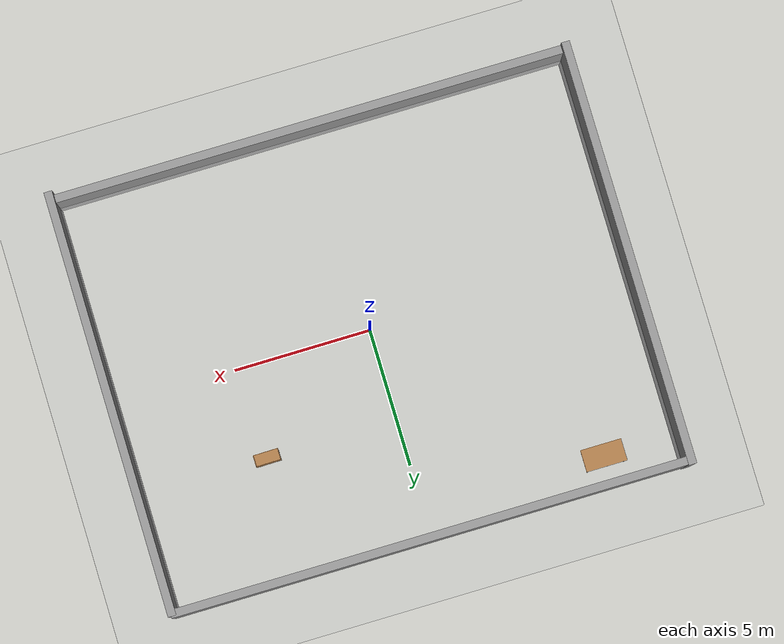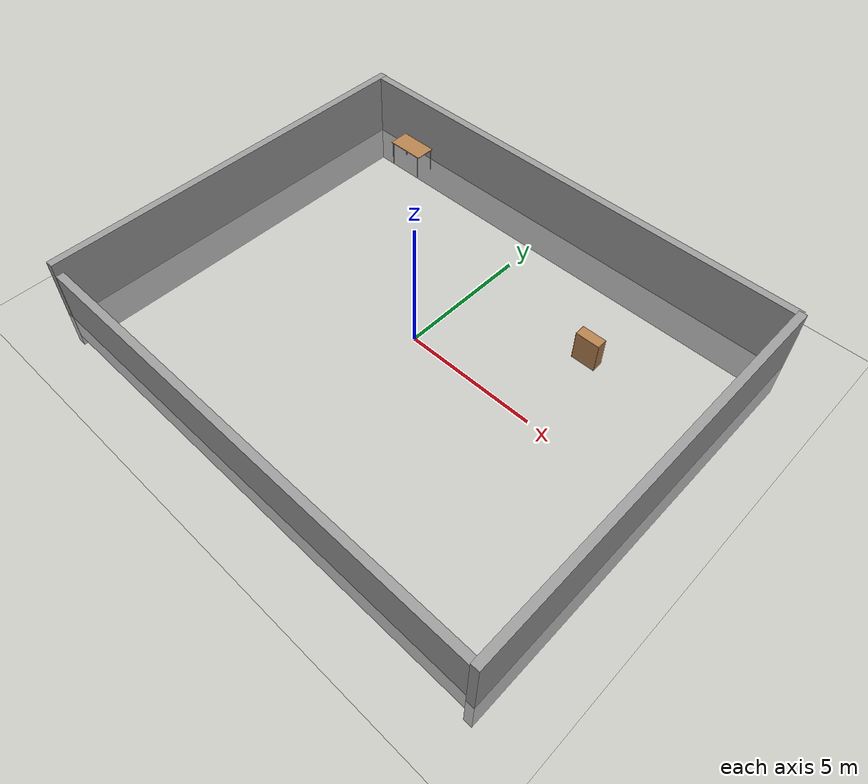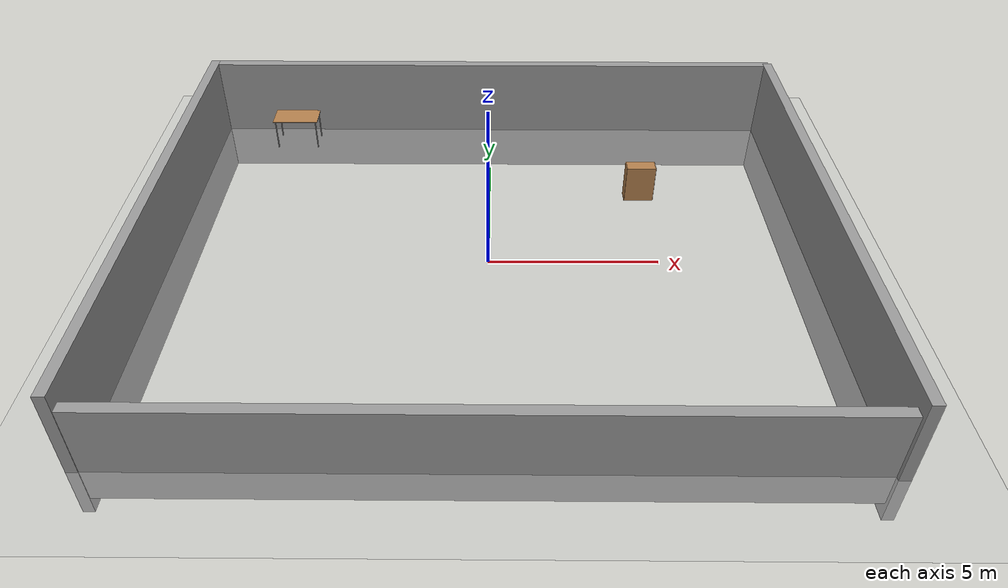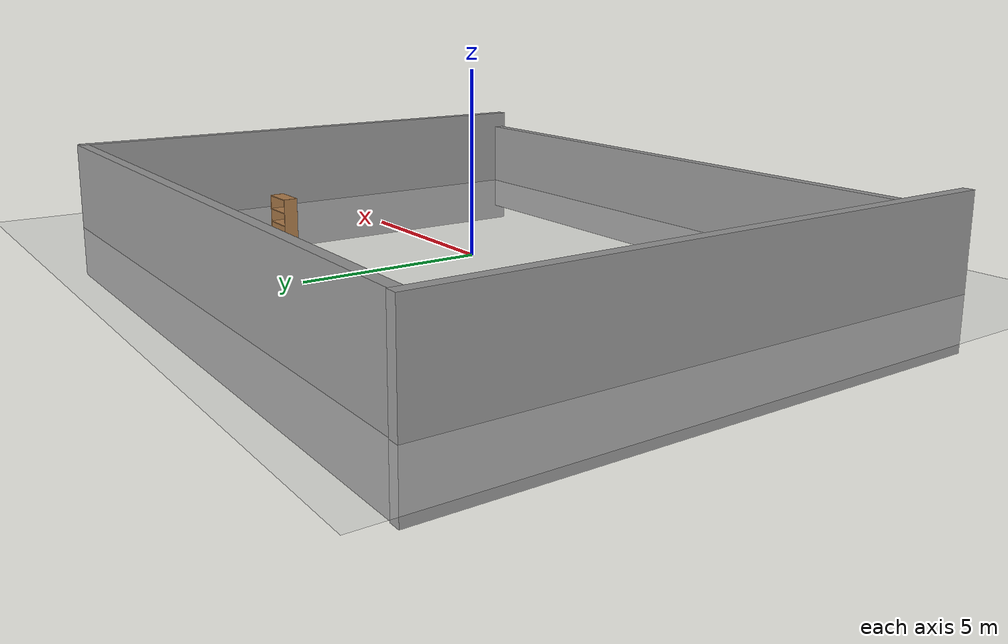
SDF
<sdf version="1.6">
 <world name="default">
  <light name="sun" type="directional">
   <pose>0 0 10 0 -0 0</pose>
   <diffuse>0.8 0.8 0.8 1</diffuse>
   <specular>0.2 0.2 0.2 1</specular>
   <attenuation>
    <range>1000</range>
    <constant>0.9</constant>
    <linear>0.01</linear>
    <quadratic>0.001</quadratic>
   </attenuation>
   <direction>-0.5 0.1 -0.9</direction>
  </light>
  <model name="ground_plane">
   <static>1</static>
   <link name="link">
    <collision name="collision">
     <geometry><plane><normal>0 0 1</normal><size>100 100</size></plane></geometry>
     <surface><friction><ode><mu>100</mu><mu2>50</mu2></ode></friction></surface>
    </collision>
    <visual name="visual">
     <cast_shadows>0</cast_shadows>
     <geometry><plane><normal>0 0 1</normal><size>100 100</size></plane></geometry>
     <material>
      <script><uri>file://media/materials/scripts/gazebo.material</uri><name>Gazebo/Grey</name></script>
     </material>
    </visual>
   </link>
  </model>
  <gravity>0 0 -9.8</gravity>
  <magnetic_field>6e-06 2.3e-05 -4.2e-05</magnetic_field>
  <atmosphere type="adiabatic"/>
  <physics name="default_physics" default="0" type="ode">
   <max_step_size>0.001</max_step_size>
   <real_time_factor>1</real_time_factor>
   <real_time_update_rate>1000</real_time_update_rate>
  </physics>
  <scene><ambient>0.4 0.4 0.4 1</ambient><background>0.7 0.7 0.7 1</background><shadows>1</shadows></scene>
  <spherical_coordinates>
   <surface_model>EARTH_WGS84</surface_model>
   <latitude_deg>0</latitude_deg>
   <longitude_deg>0</longitude_deg>
   <elevation>0</elevation>
   <heading_deg>0</heading_deg>
  </spherical_coordinates>
  <model name="wall_horizontal">
   <link name="link">
    <inertial>
     <mass>1</mass>
     <inertia>
      <ixx>0.166667</ixx>
      <ixy>0</ixy>
      <ixz>0</ixz>
      <iyy>0.166667</iyy>
      <iyz>0</iyz>
      <izz>0.166667</izz>
     </inertia>
    </inertial>
    <visual name="visual">
     <geometry><box><size>19 0.3 3</size></box></geometry>
     <material>
      <script><name>Gazebo/Grey</name><uri>file://media/materials/scripts/gazebo.material</uri></script>
      <shader type="pixel"><normal_map>__default__</normal_map></shader>
      <ambient>0.3 0.3 0.3 1</ambient>
      <diffuse>0.7 0.7 0.7 1</diffuse>
      <specular>0.01 0.01 0.01 1</specular>
      <emissive>0 0 0 1</emissive>
     </material>
    </visual>
    <collision name="collision">
     <geometry><box><size>1 1 1</size></box></geometry>
     <surface>
      <friction>
       <ode><mu>1</mu><mu2>1</mu2><fdir1>0 0 0</fdir1><slip1>0</slip1><slip2>0</slip2></ode>
       <torsional>
        <coefficient>1</coefficient>
        <patch_radius>0</patch_radius>
        <surface_radius>0</surface_radius>
        <use_patch_radius>1</use_patch_radius>
        <ode><slip>0</slip></ode>
       </torsional>
      </friction>
      <bounce><restitution_coefficient>0</restitution_coefficient><threshold>1e+06</threshold></bounce>
      <contact>
       <collide_without_contact>0</collide_without_contact>
       <collide_without_contact_bitmask>1</collide_without_contact_bitmask>
       <collide_bitmask>1</collide_bitmask>
       <ode>
        <soft_cfm>0</soft_cfm>
        <soft_erp>0.2</soft_erp>
        <kp>1e+13</kp>
        <kd>1</kd>
        <max_vel>0.01</max_vel>
        <min_depth>0</min_depth>
       </ode>
       <bullet>
        <split_impulse>1</split_impulse>
        <split_impulse_penetration_threshold>-0.01</split_impulse_penetration_threshold>
        <soft_cfm>0</soft_cfm>
        <soft_erp>0.2</soft_erp>
        <kp>1e+13</kp>
        <kd>1</kd>
       </bullet>
      </contact>
     </surface>
    </collision>
   </link>
   <static>0</static>
   <pose>0.016453 -7.48188 0.499995 0 -1e-05 0</pose>
  </model>
  <model name="wall_horizontal_0">
   <link name="link">
    <inertial>
     <mass>1</mass>
     <inertia>
      <ixx>0.166667</ixx>
      <ixy>0</ixy>
      <ixz>0</ixz>
      <iyy>0.166667</iyy>
      <iyz>0</iyz>
      <izz>0.166667</izz>
     </inertia>
    </inertial>
    <visual name="visual">
     <geometry><box><size>19 0.3 4</size></box></geometry>
     <material>
      <script><name>Gazebo/Grey</name><uri>file://media/materials/scripts/gazebo.material</uri></script>
      <shader type="pixel"><normal_map>__default__</normal_map></shader>
      <ambient>0.3 0.3 0.3 1</ambient>
      <diffuse>0.7 0.7 0.7 1</diffuse>
      <specular>0.01 0.01 0.01 1</specular>
      <emissive>0 0 0 1</emissive>
     </material>
    </visual>
    <collision name="collision">
     <geometry><box><size>1 1 1</size></box></geometry>
     <surface>
      <friction>
       <ode><mu>1</mu><mu2>1</mu2><fdir1>0 0 0</fdir1><slip1>0</slip1><slip2>0</slip2></ode>
       <torsional>
        <coefficient>1</coefficient>
        <patch_radius>0</patch_radius>
        <surface_radius>0</surface_radius>
        <use_patch_radius>1</use_patch_radius>
        <ode><slip>0</slip></ode>
       </torsional>
      </friction>
      <bounce><restitution_coefficient>0</restitution_coefficient><threshold>1e+06</threshold></bounce>
      <contact>
       <collide_without_contact>0</collide_without_contact>
       <collide_without_contact_bitmask>1</collide_without_contact_bitmask>
       <collide_bitmask>1</collide_bitmask>
       <ode>
        <soft_cfm>0</soft_cfm>
        <soft_erp>0.2</soft_erp>
        <kp>1e+13</kp>
        <kd>1</kd>
        <max_vel>0.01</max_vel>
        <min_depth>0</min_depth>
       </ode>
       <bullet>
        <split_impulse>1</split_impulse>
        <split_impulse_penetration_threshold>-0.01</split_impulse_penetration_threshold>
        <soft_cfm>0</soft_cfm>
        <soft_erp>0.2</soft_erp>
        <kp>1e+13</kp>
        <kd>1</kd>
       </bullet>
      </contact>
     </surface>
    </collision>
   </link>
   <static>0</static>
   <pose>0.031259 7.67758 0.499974 1e-05 -0 0</pose>
  </model>
  <model name="bookshelf">
   <static>1</static>
   <link name="link">
    <inertial><mass>1</mass></inertial>
    <collision name="back">
     <pose>0 0.005 0.6 0 -0 0</pose>
     <geometry><box><size>0.9 0.01 1.2</size></box></geometry>
    </collision>
    <visual name="visual1">
     <pose>0 0.005 0.6 0 -0 0</pose>
     <geometry><box><size>0.9 0.01 1.2</size></box></geometry>
     <material>
      <script><uri>file://media/materials/scripts/gazebo.material</uri><name>Gazebo/Wood</name></script>
     </material>
    </visual>
    <collision name="left_side">
     <pose>0.45 -0.195 0.6 0 -0 0</pose>
     <geometry><box><size>0.02 0.4 1.2</size></box></geometry>
    </collision>
    <visual name="visual2">
     <pose>0.45 -0.195 0.6 0 -0 0</pose>
     <geometry><box><size>0.02 0.4 1.2</size></box></geometry>
     <material>
      <script><uri>file://media/materials/scripts/gazebo.material</uri><name>Gazebo/Wood</name></script>
     </material>
    </visual>
    <collision name="right_side">
     <pose>-0.45 -0.195 0.6 0 -0 0</pose>
     <geometry><box><size>0.02 0.4 1.2</size></box></geometry>
    </collision>
    <visual name="visual3">
     <pose>-0.45 -0.195 0.6 0 -0 0</pose>
     <geometry><box><size>0.02 0.4 1.2</size></box></geometry>
     <material>
      <script><uri>file://media/materials/scripts/gazebo.material</uri><name>Gazebo/Wood</name></script>
     </material>
    </visual>
    <collision name="bottom">
     <pose>0 -0.195 0.03 0 -0 0</pose>
     <geometry><box><size>0.88 0.4 0.06</size></box></geometry>
    </collision>
    <visual name="visual4">
     <pose>0 -0.195 0.03 0 -0 0</pose>
     <geometry><box><size>0.88 0.4 0.06</size></box></geometry>
     <material>
      <script><uri>file://media/materials/scripts/gazebo.material</uri><name>Gazebo/Wood</name></script>
     </material>
    </visual>
    <collision name="top">
     <pose>0 -0.195 1.19 0 -0 0</pose>
     <geometry><box><size>0.88 0.4 0.02</size></box></geometry>
    </collision>
    <visual name="visual5">
     <pose>0 -0.195 1.19 0 -0 0</pose>
     <geometry><box><size>0.88 0.4 0.02</size></box></geometry>
     <material>
      <script><uri>file://media/materials/scripts/gazebo.material</uri><name>Gazebo/Wood</name></script>
     </material>
    </visual>
    <collision name="low_shelf">
     <pose>0 -0.195 0.43 0 -0 0</pose>
     <geometry><box><size>0.88 0.4 0.02</size></box></geometry>
    </collision>
    <visual name="visual6">
     <pose>0 -0.195 0.43 0 -0 0</pose>
     <geometry><box><size>0.88 0.4 0.02</size></box></geometry>
     <material>
      <script><uri>file://media/materials/scripts/gazebo.material</uri><name>Gazebo/Wood</name></script>
     </material>
    </visual>
    <collision name="high_shelf">
     <pose>0 -0.195 0.8 0 -0 0</pose>
     <geometry><box><size>0.88 0.4 0.02</size></box></geometry>
    </collision>
    <visual name="visual7">
     <pose>0 -0.195 0.8 0 -0 0</pose>
     <geometry><box><size>0.88 0.4 0.02</size></box></geometry>
     <material>
      <script><uri>file://media/materials/scripts/gazebo.material</uri><name>Gazebo/Wood</name></script>
     </material>
    </visual>
   </link>
   <pose>4.77774 3.13931 0 0 0 -3.13067</pose>
  </model>
  <model name="table">
   <static>1</static>
   <link name="link">
    <collision name="surface">
     <pose>0 0 1 0 -0 0</pose>
     <geometry><box><size>1.5 0.8 0.03</size></box></geometry>
     <surface><friction><ode><mu>0.6</mu><mu2>0.6</mu2></ode></friction></surface>
    </collision>
    <visual name="visual1">
     <pose>0 0 1 0 -0 0</pose>
     <geometry><box><size>1.5 0.8 0.03</size></box></geometry>
     <material>
      <script><uri>file://media/materials/scripts/gazebo.material</uri><name>Gazebo/Wood</name></script>
     </material>
    </visual>
    <collision name="front_left_leg">
     <pose>0.68 0.38 0.5 0 -0 0</pose>
     <geometry><cylinder><radius>0.02</radius><length>1</length></cylinder></geometry>
    </collision>
    <visual name="front_left_leg">
     <pose>0.68 0.38 0.5 0 -0 0</pose>
     <geometry><cylinder><radius>0.02</radius><length>1</length></cylinder></geometry>
     <material>
      <script><uri>file://media/materials/scripts/gazebo.material</uri><name>Gazebo/Grey</name></script>
     </material>
    </visual>
    <collision name="front_right_leg">
     <pose>0.68 -0.38 0.5 0 -0 0</pose>
     <geometry><cylinder><radius>0.02</radius><length>1</length></cylinder></geometry>
    </collision>
    <visual name="front_right_leg">
     <pose>0.68 -0.38 0.5 0 -0 0</pose>
     <geometry><cylinder><radius>0.02</radius><length>1</length></cylinder></geometry>
     <material>
      <script><uri>file://media/materials/scripts/gazebo.material</uri><name>Gazebo/Grey</name></script>
     </material>
    </visual>
    <collision name="back_right_leg">
     <pose>-0.68 -0.38 0.5 0 -0 0</pose>
     <geometry><cylinder><radius>0.02</radius><length>1</length></cylinder></geometry>
    </collision>
    <visual name="back_right_leg">
     <pose>-0.68 -0.38 0.5 0 -0 0</pose>
     <geometry><cylinder><radius>0.02</radius><length>1</length></cylinder></geometry>
     <material>
      <script><uri>file://media/materials/scripts/gazebo.material</uri><name>Gazebo/Grey</name></script>
     </material>
    </visual>
    <collision name="back_left_leg">
     <pose>-0.68 0.38 0.5 0 -0 0</pose>
     <geometry><cylinder><radius>0.02</radius><length>1</length></cylinder></geometry>
    </collision>
    <visual name="back_left_leg">
     <pose>-0.68 0.38 0.5 0 -0 0</pose>
     <geometry><cylinder><radius>0.02</radius><length>1</length></cylinder></geometry>
     <material>
      <script><uri>file://media/materials/scripts/gazebo.material</uri><name>Gazebo/Grey</name></script>
     </material>
    </visual>
   </link>
   <pose>-6.64024 6.63939 0 0 -0 0</pose>
  </model>
  <model name="wall_0_0">
   <link name="link">
    <inertial>
     <mass>1</mass>
     <inertia>
      <ixx>0.166667</ixx>
      <ixy>0</ixy>
      <ixz>0</ixz>
      <iyy>0.166667</iyy>
      <iyz>0</iyz>
      <izz>0.166667</izz>
     </inertia>
    </inertial>
    <visual name="visual">
     <geometry><box><size>0.3 15.5 4</size></box></geometry>
     <material>
      <script><name>Gazebo/Grey</name><uri>file://media/materials/scripts/gazebo.material</uri></script>
      <shader type="pixel"><normal_map>__default__</normal_map></shader>
      <ambient>0.3 0.3 0.3 1</ambient>
      <diffuse>0.7 0.7 0.7 1</diffuse>
      <specular>0.01 0.01 0.01 1</specular>
      <emissive>0 0 0 1</emissive>
     </material>
     <pose>-0.3 1.2 0 0 -0 0</pose>
    </visual>
    <collision name="collision">
     <geometry><box><size>1 1 1</size></box></geometry>
     <surface>
      <friction>
       <ode><mu>1</mu><mu2>1</mu2><fdir1>0 0 0</fdir1><slip1>0</slip1><slip2>0</slip2></ode>
       <torsional>
        <coefficient>1</coefficient>
        <patch_radius>0</patch_radius>
        <surface_radius>0</surface_radius>
        <use_patch_radius>1</use_patch_radius>
        <ode><slip>0</slip></ode>
       </torsional>
      </friction>
      <bounce><restitution_coefficient>0</restitution_coefficient><threshold>1e+06</threshold></bounce>
      <contact>
       <collide_without_contact>0</collide_without_contact>
       <collide_without_contact_bitmask>1</collide_without_contact_bitmask>
       <collide_bitmask>1</collide_bitmask>
       <ode>
        <soft_cfm>0</soft_cfm>
        <soft_erp>0.2</soft_erp>
        <kp>1e+13</kp>
        <kd>1</kd>
        <max_vel>0.01</max_vel>
        <min_depth>0</min_depth>
       </ode>
       <bullet>
        <split_impulse>1</split_impulse>
        <split_impulse_penetration_threshold>-0.01</split_impulse_penetration_threshold>
        <soft_cfm>0</soft_cfm>
        <soft_erp>0.2</soft_erp>
        <kp>1e+13</kp>
        <kd>1</kd>
       </bullet>
      </contact>
     </surface>
    </collision>
   </link>
   <static>0</static>
   <pose>-9.14111 -1.09715 0.499995 1e-05 -0 0</pose>
  </model>
  <model name="wall_0">
   <link name="link">
    <inertial>
     <mass>1</mass>
     <inertia>
      <ixx>0.166667</ixx>
      <ixy>0</ixy>
      <ixz>0</ixz>
      <iyy>0.166667</iyy>
      <iyz>0</iyz>
      <izz>0.166667</izz>
     </inertia>
    </inertial>
    <visual name="visual">
     <geometry><box><size>0.3 15.5 4</size></box></geometry>
     <material>
      <script><name>Gazebo/Grey</name><uri>file://media/materials/scripts/gazebo.material</uri></script>
      <shader type="pixel"><normal_map>__default__</normal_map></shader>
      <ambient>0.3 0.3 0.3 1</ambient>
      <diffuse>0.7 0.7 0.7 1</diffuse>
      <specular>0.01 0.01 0.01 1</specular>
      <emissive>0 0 0 1</emissive>
     </material>
     <pose>-0.3 1.2 0 0 -0 0</pose>
    </visual>
    <collision name="collision">
     <geometry><box><size>1 1 1</size></box></geometry>
     <surface>
      <friction>
       <ode><mu>1</mu><mu2>1</mu2><fdir1>0 0 0</fdir1><slip1>0</slip1><slip2>0</slip2></ode>
       <torsional>
        <coefficient>1</coefficient>
        <patch_radius>0</patch_radius>
        <surface_radius>0</surface_radius>
        <use_patch_radius>1</use_patch_radius>
        <ode><slip>0</slip></ode>
       </torsional>
      </friction>
      <bounce><restitution_coefficient>0</restitution_coefficient><threshold>1e+06</threshold></bounce>
      <contact>
       <collide_without_contact>0</collide_without_contact>
       <collide_without_contact_bitmask>1</collide_without_contact_bitmask>
       <collide_bitmask>1</collide_bitmask>
       <ode>
        <soft_cfm>0</soft_cfm>
        <soft_erp>0.2</soft_erp>
        <kp>1e+13</kp>
        <kd>1</kd>
        <max_vel>0.01</max_vel>
        <min_depth>0</min_depth>
       </ode>
       <bullet>
        <split_impulse>1</split_impulse>
        <split_impulse_penetration_threshold>-0.01</split_impulse_penetration_threshold>
        <soft_cfm>0</soft_cfm>
        <soft_erp>0.2</soft_erp>
        <kp>1e+13</kp>
        <kd>1</kd>
       </bullet>
      </contact>
     </surface>
    </collision>
   </link>
   <static>0</static>
   <pose>9.79697 -1.19206 0.499995 0 1e-05 0</pose>
  </model>
 </world>
</sdf>
